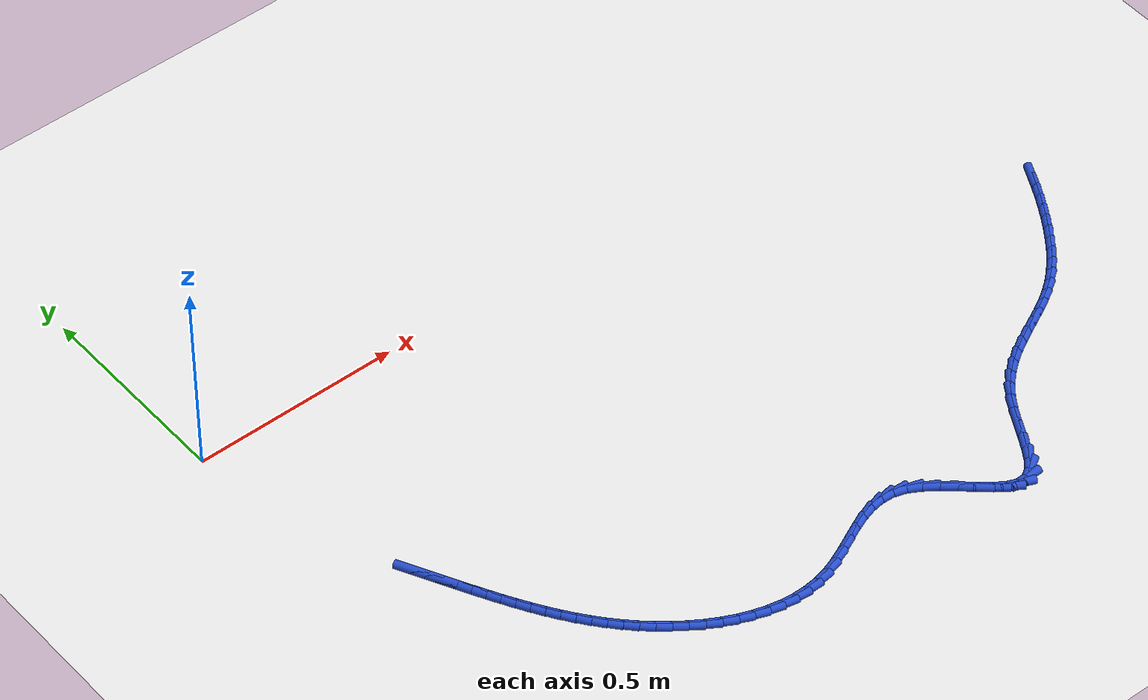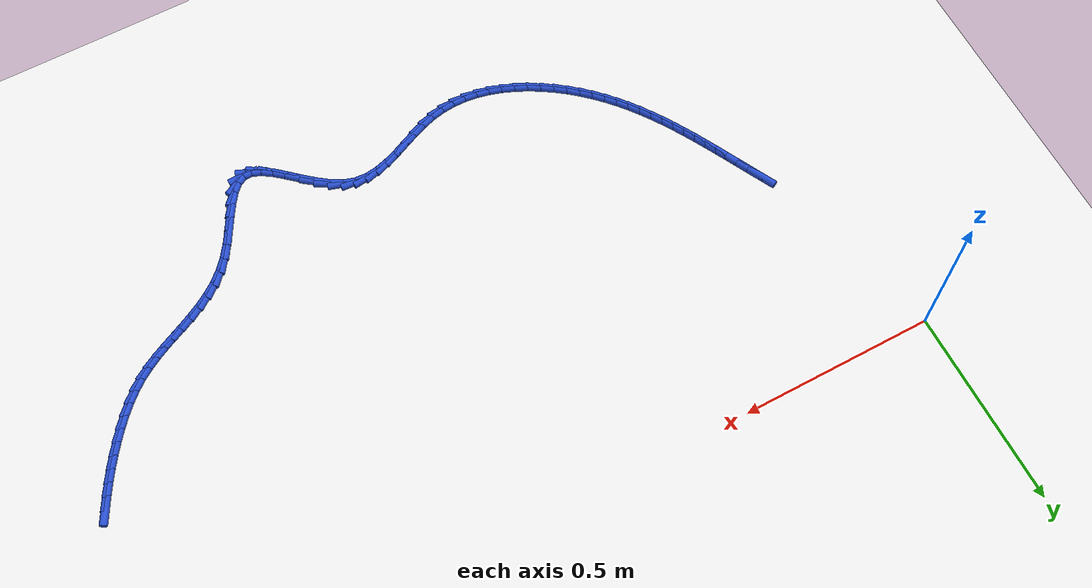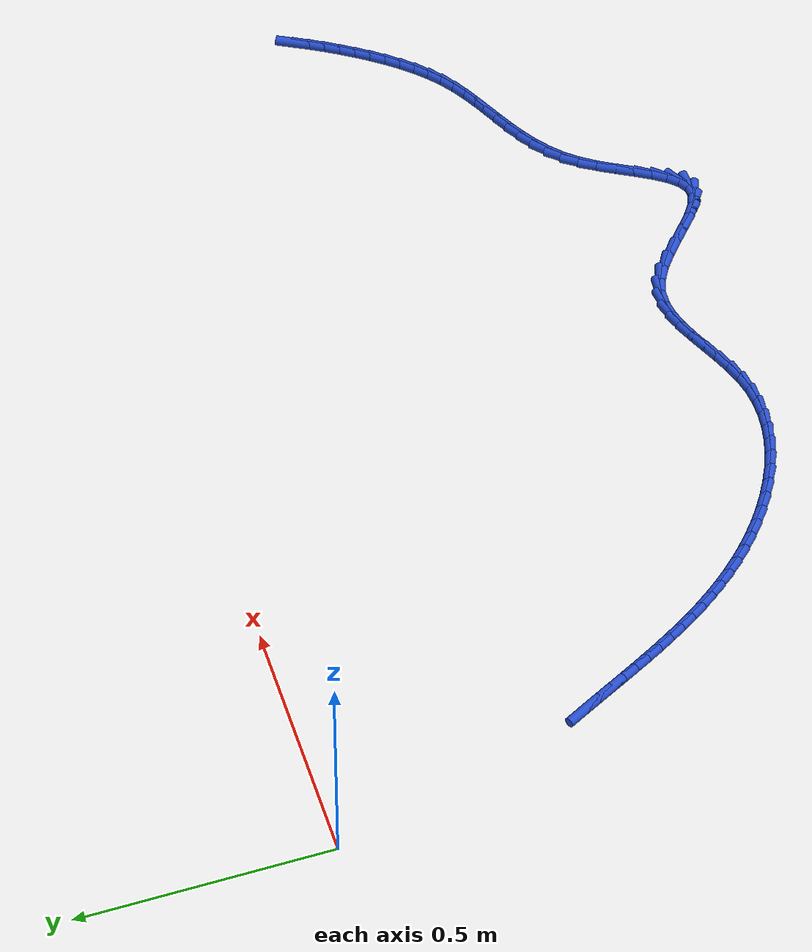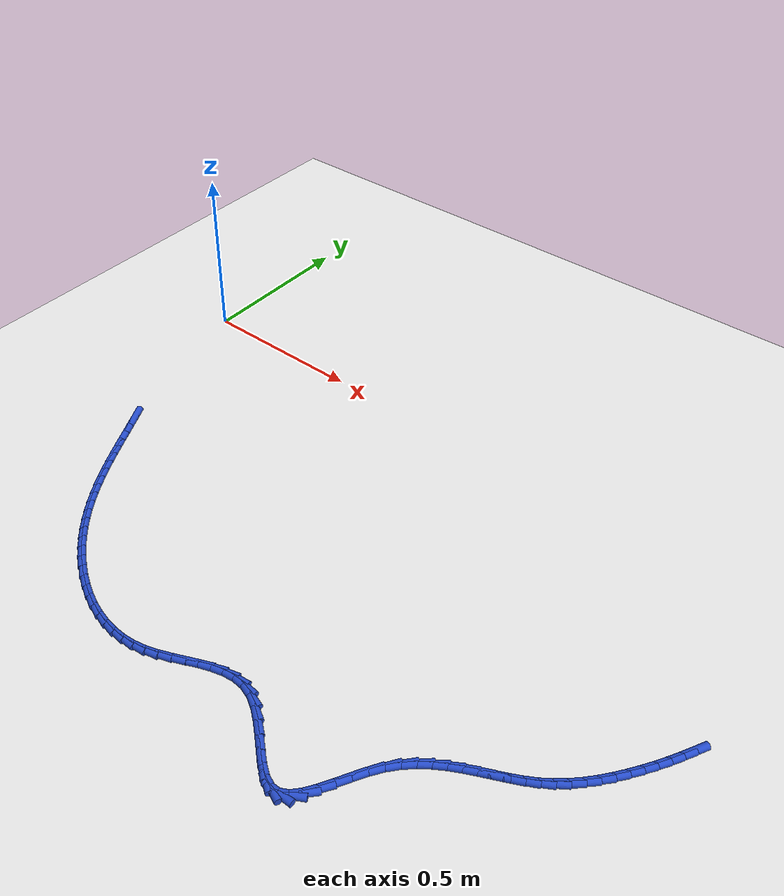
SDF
<sdf version="1.6">
 <world name="default">
  <model name="ground_plane">
   <static>1</static>
   <link name="link">
    <collision name="collision">
     <geometry><plane><normal>0 0 1</normal><size>100 100</size></plane></geometry>
     <surface><friction><ode><mu>100</mu><mu2>50</mu2></ode></friction></surface>
    </collision>
    <visual name="visual">
     <cast_shadows>0</cast_shadows>
     <geometry><plane><normal>0 0 1</normal><size>100 100</size></plane></geometry>
     <material>
      <script><uri>file://media/materials/scripts/gazebo.material</uri><name>Gazebo/WhiteGlow</name></script>
     </material>
    </visual>
   </link>
  </model>
  <model name="line">
   <link name="link_130">
    <pose>1.9173801987009982 -0.49442472301004287 0.01 0 1.57 1.0878493283340742</pose>
    <collision name="collision">
     <geometry><cylinder><radius>0.01</radius><length>0.08</length></cylinder></geometry>
    </collision>
    <visual name="visual">
     <material>
      <script><name>Gazebo/Blue</name><uri>file://media/materials/scripts/gazebo.material</uri></script>
     </material>
     <geometry><cylinder><radius>0.01</radius><length>0.08</length></cylinder></geometry>
    </visual>
   </link>
   <link name="link_131">
    <pose>1.9023852460184747 -0.5230212701452351 0.01 0 1.57 1.0590753725528652</pose>
    <collision name="collision">
     <geometry><cylinder><radius>0.01</radius><length>0.08</length></cylinder></geometry>
    </collision>
    <visual name="visual">
     <material>
      <script><name>Gazebo/Blue</name><uri>file://media/materials/scripts/gazebo.material</uri></script>
     </material>
     <geometry><cylinder><radius>0.01</radius><length>0.08</length></cylinder></geometry>
    </visual>
   </link>
   <link name="link_132">
    <pose>1.8865305405727772 -0.5512515625719641 0.01 0 1.57 1.029764823694465</pose>
    <collision name="collision">
     <geometry><cylinder><radius>0.01</radius><length>0.08</length></cylinder></geometry>
    </collision>
    <visual name="visual">
     <material>
      <script><name>Gazebo/Blue</name><uri>file://media/materials/scripts/gazebo.material</uri></script>
     </material>
     <geometry><cylinder><radius>0.01</radius><length>0.08</length></cylinder></geometry>
    </visual>
   </link>
   <link name="link_133">
    <pose>1.869797259270682 -0.5791017166332928 0.01 0 1.57 0.9999664590166075</pose>
    <collision name="collision">
     <geometry><cylinder><radius>0.01</radius><length>0.08</length></cylinder></geometry>
    </collision>
    <visual name="visual">
     <material>
      <script><name>Gazebo/Blue</name><uri>file://media/materials/scripts/gazebo.material</uri></script>
     </material>
     <geometry><cylinder><radius>0.01</radius><length>0.08</length></cylinder></geometry>
    </visual>
   </link>
   <link name="link_134">
    <pose>1.852166579018963 -0.6065578486722841 0.01 0 1.57 0.9695058572786658</pose>
    <collision name="collision">
     <geometry><cylinder><radius>0.01</radius><length>0.08</length></cylinder></geometry>
    </collision>
    <visual name="visual">
     <material>
      <script><name>Gazebo/Blue</name><uri>file://media/materials/scripts/gazebo.material</uri></script>
     </material>
     <geometry><cylinder><radius>0.01</radius><length>0.08</length></cylinder></geometry>
    </visual>
   </link>
   <link name="link_135">
    <pose>1.8336175857540793 -0.6335958988252974 0.01 0 1.57 0.9345024608657178</pose>
    <collision name="collision">
     <geometry><cylinder><radius>0.01</radius><length>0.08</length></cylinder></geometry>
    </collision>
    <visual name="visual">
     <material>
      <script><name>Gazebo/Blue</name><uri>file://media/materials/scripts/gazebo.material</uri></script>
     </material>
     <geometry><cylinder><radius>0.01</radius><length>0.08</length></cylinder></geometry>
    </visual>
   </link>
   <link name="link_136">
    <pose>1.8140943725599121 -0.6600215061496697 0.01 0 1.57 0.8912859158108628</pose>
    <collision name="collision">
     <geometry><cylinder><radius>0.01</radius><length>0.08</length></cylinder></geometry>
    </collision>
    <visual name="visual">
     <material>
      <script><name>Gazebo/Blue</name><uri>file://media/materials/scripts/gazebo.material</uri></script>
     </material>
     <geometry><cylinder><radius>0.01</radius><length>0.08</length></cylinder></geometry>
    </visual>
   </link>
   <link name="link_137">
    <pose>1.793512064196787 -0.6854993284338482 0.01 0 1.57 0.8389928241421926</pose>
    <collision name="collision">
     <geometry><cylinder><radius>0.01</radius><length>0.08</length></cylinder></geometry>
    </collision>
    <visual name="visual">
     <material>
      <script><name>Gazebo/Blue</name><uri>file://media/materials/scripts/gazebo.material</uri></script>
     </material>
     <geometry><cylinder><radius>0.01</radius><length>0.08</length></cylinder></geometry>
    </visual>
   </link>
   <link name="link_138">
    <pose>1.7717849128603278 -0.7096897769216431 0.01 0 1.57 0.7767374497404815</pose>
    <collision name="collision">
     <geometry><cylinder><radius>0.01</radius><length>0.08</length></cylinder></geometry>
    </collision>
    <visual name="visual">
     <material>
      <script><name>Gazebo/Blue</name><uri>file://media/materials/scripts/gazebo.material</uri></script>
     </material>
     <geometry><cylinder><radius>0.01</radius><length>0.08</length></cylinder></geometry>
    </visual>
   </link>
   <link name="link_139">
    <pose>1.7488271707461562 -0.7322532628568654 0.01 0 1.57 0.7036316256539183</pose>
    <collision name="collision">
     <geometry><cylinder><radius>0.01</radius><length>0.08</length></cylinder></geometry>
    </collision>
    <visual name="visual">
     <material>
      <script><name>Gazebo/Blue</name><uri>file://media/materials/scripts/gazebo.material</uri></script>
     </material>
     <geometry><cylinder><radius>0.01</radius><length>0.08</length></cylinder></geometry>
    </visual>
   </link>
   <link name="link_140">
    <pose>1.7245530900498973 -0.7528501974833244 0.01 0 1.57 0.6202141922207857</pose>
    <collision name="collision">
     <geometry><cylinder><radius>0.01</radius><length>0.08</length></cylinder></geometry>
    </collision>
    <visual name="visual">
     <material>
      <script><name>Gazebo/Blue</name><uri>file://media/materials/scripts/gazebo.material</uri></script>
     </material>
     <geometry><cylinder><radius>0.01</radius><length>0.08</length></cylinder></geometry>
    </visual>
   </link>
   <link name="link_141">
    <pose>1.698892516826381 -0.7711778106630859 0.01 0 1.57 0.544757343311603</pose>
    <collision name="collision">
     <geometry><cylinder><radius>0.01</radius><length>0.08</length></cylinder></geometry>
    </collision>
    <visual name="visual">
     <material>
      <script><name>Gazebo/Blue</name><uri>file://media/materials/scripts/gazebo.material</uri></script>
     </material>
     <geometry><cylinder><radius>0.01</radius><length>0.08</length></cylinder></geometry>
    </visual>
   </link>
   <link name="link_142">
    <pose>1.6720028680957777 -0.787470649441063 0.01 0 1.57 0.49215629121505666</pose>
    <collision name="collision">
     <geometry><cylinder><radius>0.01</radius><length>0.08</length></cylinder></geometry>
    </collision>
    <visual name="visual">
     <material>
      <script><name>Gazebo/Blue</name><uri>file://media/materials/scripts/gazebo.material</uri></script>
     </material>
     <geometry><cylinder><radius>0.01</radius><length>0.08</length></cylinder></geometry>
    </visual>
   </link>
   <link name="link_143">
    <pose>1.6442138457847084 -0.8023700422828252 0.01 0 1.57 0.4630870605948877</pose>
    <collision name="collision">
     <geometry><cylinder><radius>0.01</radius><length>0.08</length></cylinder></geometry>
    </collision>
    <visual name="visual">
     <material>
      <script><name>Gazebo/Blue</name><uri>file://media/materials/scripts/gazebo.material</uri></script>
     </material>
     <geometry><cylinder><radius>0.01</radius><length>0.08</length></cylinder></geometry>
    </visual>
   </link>
   <link name="link_144">
    <pose>1.6158594192875653 -0.8165273935603974 0.01 0 1.57 0.45729672517436504</pose>
    <collision name="collision">
     <geometry><cylinder><radius>0.01</radius><length>0.08</length></cylinder></geometry>
    </collision>
    <visual name="visual">
     <material>
      <script><name>Gazebo/Blue</name><uri>file://media/materials/scripts/gazebo.material</uri></script>
     </material>
     <geometry><cylinder><radius>0.01</radius><length>0.08</length></cylinder></geometry>
    </visual>
   </link>
   <link name="link_145">
    <pose>1.5872735579987376 -0.8305941076458053 0.01 0 1.57 0.47442511153995576</pose>
    <collision name="collision">
     <geometry><cylinder><radius>0.01</radius><length>0.08</length></cylinder></geometry>
    </collision>
    <visual name="visual">
     <material>
      <script><name>Gazebo/Blue</name><uri>file://media/materials/scripts/gazebo.material</uri></script>
     </material>
     <geometry><cylinder><radius>0.01</radius><length>0.08</length></cylinder></geometry>
    </visual>
   </link>
   <link name="link_146">
    <pose>1.558790231312615 -0.8452215889110748 0.01 0 1.57 0.5141026846250231</pose>
    <collision name="collision">
     <geometry><cylinder><radius>0.01</radius><length>0.08</length></cylinder></geometry>
    </collision>
    <visual name="visual">
     <material>
      <script><name>Gazebo/Blue</name><uri>file://media/materials/scripts/gazebo.material</uri></script>
     </material>
     <geometry><cylinder><radius>0.01</radius><length>0.08</length></cylinder></geometry>
    </visual>
   </link>
   <link name="link_147">
    <pose>1.5307434086235885 -0.8610612417282317 0.01 0 1.57 0.5756945617113949</pose>
    <collision name="collision">
     <geometry><cylinder><radius>0.01</radius><length>0.08</length></cylinder></geometry>
    </collision>
    <visual name="visual">
     <material>
      <script><name>Gazebo/Blue</name><uri>file://media/materials/scripts/gazebo.material</uri></script>
     </material>
     <geometry><cylinder><radius>0.01</radius><length>0.08</length></cylinder></geometry>
    </visual>
   </link>
   <link name="link_148">
    <pose>1.503467059326046 -0.8787644704693017 0.01 0 1.57 0.6577561277380527</pose>
    <collision name="collision">
     <geometry><cylinder><radius>0.01</radius><length>0.08</length></cylinder></geometry>
    </collision>
    <visual name="visual">
     <material>
      <script><name>Gazebo/Blue</name><uri>file://media/materials/scripts/gazebo.material</uri></script>
     </material>
     <geometry><cylinder><radius>0.01</radius><length>0.08</length></cylinder></geometry>
    </visual>
   </link>
   <link name="link_149">
    <pose>1.47729515281438 -0.8989826795063097 0.01 0 1.57 0.7573723730848415</pose>
    <collision name="collision">
     <geometry><cylinder><radius>0.01</radius><length>0.08</length></cylinder></geometry>
    </collision>
    <visual name="visual">
     <material>
      <script><name>Gazebo/Blue</name><uri>file://media/materials/scripts/gazebo.material</uri></script>
     </material>
     <geometry><cylinder><radius>0.01</radius><length>0.08</length></cylinder></geometry>
    </visual>
   </link>
   <link name="link_150">
    <pose>1.4525616584829801 -0.922367273211282 0.01 0 1.57 0.8697464888515052</pose>
    <collision name="collision">
     <geometry><cylinder><radius>0.01</radius><length>0.08</length></cylinder></geometry>
    </collision>
    <visual name="visual">
     <material>
      <script><name>Gazebo/Blue</name><uri>file://media/materials/scripts/gazebo.material</uri></script>
     </material>
     <geometry><cylinder><radius>0.01</radius><length>0.08</length></cylinder></geometry>
    </visual>
   </link>
   <link name="link_151">
    <pose>1.429600545726236 -0.9495696559562434 0.01 0 1.57 0.9787629173978222</pose>
    <collision name="collision">
     <geometry><cylinder><radius>0.01</radius><length>0.08</length></cylinder></geometry>
    </collision>
    <visual name="visual">
     <material>
      <script><name>Gazebo/Blue</name><uri>file://media/materials/scripts/gazebo.material</uri></script>
     </material>
     <geometry><cylinder><radius>0.01</radius><length>0.08</length></cylinder></geometry>
    </visual>
   </link>
   <link name="link_152">
    <pose>1.408605648316937 -0.980788617872846 0.01 0 1.57 1.04525622446576</pose>
    <collision name="collision">
     <geometry><cylinder><radius>0.01</radius><length>0.08</length></cylinder></geometry>
    </collision>
    <visual name="visual">
     <material>
      <script><name>Gazebo/Blue</name><uri>file://media/materials/scripts/gazebo.material</uri></script>
     </material>
     <geometry><cylinder><radius>0.01</radius><length>0.08</length></cylinder></geometry>
    </visual>
   </link>
   <link name="link_153">
    <pose>1.3891738882489324 -1.0142950254976388 0.01 0 1.57 1.0684730981246096</pose>
    <collision name="collision">
     <geometry><cylinder><radius>0.01</radius><length>0.08</length></cylinder></geometry>
    </collision>
    <visual name="visual">
     <material>
      <script><name>Gazebo/Blue</name><uri>file://media/materials/scripts/gazebo.material</uri></script>
     </material>
     <geometry><cylinder><radius>0.01</radius><length>0.08</length></cylinder></geometry>
    </visual>
   </link>
   <link name="link_154">
    <pose>1.3707432849790213 -1.0478465171795142 0.01 0 1.57 1.0498551595724042</pose>
    <collision name="collision">
     <geometry><cylinder><radius>0.01</radius><length>0.08</length></cylinder></geometry>
    </collision>
    <visual name="visual">
     <material>
      <script><name>Gazebo/Blue</name><uri>file://media/materials/scripts/gazebo.material</uri></script>
     </material>
     <geometry><cylinder><radius>0.01</radius><length>0.08</length></cylinder></geometry>
    </visual>
   </link>
   <link name="link_155">
    <pose>1.35275185659107 -1.079200726833023 0.01 0 1.57 0.9784031066535749</pose>
    <collision name="collision">
     <geometry><cylinder><radius>0.01</radius><length>0.08</length></cylinder></geometry>
    </collision>
    <visual name="visual">
     <material>
      <script><name>Gazebo/Blue</name><uri>file://media/materials/scripts/gazebo.material</uri></script>
     </material>
     <geometry><cylinder><radius>0.01</radius><length>0.08</length></cylinder></geometry>
    </visual>
   </link>
   <link name="link_156">
    <pose>1.3346376211689432 -1.1061152883727174 0.01 0 1.57 0.8221089303563327</pose>
    <collision name="collision">
     <geometry><cylinder><radius>0.01</radius><length>0.08</length></cylinder></geometry>
    </collision>
    <visual name="visual">
     <material>
      <script><name>Gazebo/Blue</name><uri>file://media/materials/scripts/gazebo.material</uri></script>
     </material>
     <geometry><cylinder><radius>0.01</radius><length>0.08</length></cylinder></geometry>
    </visual>
   </link>
   <link name="link_157">
    <pose>1.3158385967965092 -1.126347835713148 0.01 0 1.57 0.5136166977992139</pose>
    <collision name="collision">
     <geometry><cylinder><radius>0.01</radius><length>0.08</length></cylinder></geometry>
    </collision>
    <visual name="visual">
     <material>
      <script><name>Gazebo/Blue</name><uri>file://media/materials/scripts/gazebo.material</uri></script>
     </material>
     <geometry><cylinder><radius>0.01</radius><length>0.08</length></cylinder></geometry>
    </visual>
   </link>
   <link name="link_158">
    <pose>1.2957928015576323 -1.1376560027688662 0.01 0 1.57 0.018917991141412068</pose>
    <collision name="collision">
     <geometry><cylinder><radius>0.01</radius><length>0.08</length></cylinder></geometry>
    </collision>
    <visual name="visual">
     <material>
      <script><name>Gazebo/Blue</name><uri>file://media/materials/scripts/gazebo.material</uri></script>
     </material>
     <geometry><cylinder><radius>0.01</radius><length>0.08</length></cylinder></geometry>
    </visual>
   </link>
   <link name="link_159">
    <pose>1.273982799134783 -1.1380686534305724 0.01 0 1.57 -0.38730989538528104</pose>
    <collision name="collision">
     <geometry><cylinder><radius>0.01</radius><length>0.08</length></cylinder></geometry>
    </collision>
    <visual name="visual">
     <material>
      <script><name>Gazebo/Blue</name><uri>file://media/materials/scripts/gazebo.material</uri></script>
     </material>
     <geometry><cylinder><radius>0.01</radius><length>0.08</length></cylinder></geometry>
    </visual>
   </link>
   <link name="link_160">
    <pose>1.2503535248723738 -1.1284299477972044 0.01 0 1.57 -0.5977695269851019</pose>
    <collision name="collision">
     <geometry><cylinder><radius>0.01</radius><length>0.08</length></cylinder></geometry>
    </collision>
    <visual name="visual">
     <material>
      <script><name>Gazebo/Blue</name><uri>file://media/materials/scripts/gazebo.material</uri></script>
     </material>
     <geometry><cylinder><radius>0.01</radius><length>0.08</length></cylinder></geometry>
    </visual>
   </link>
   <link name="link_161">
    <pose>1.2251238304610061 -1.11125187233826 0.01 0 1.57 -0.6949725949859916</pose>
    <collision name="collision">
     <geometry><cylinder><radius>0.01</radius><length>0.08</length></cylinder></geometry>
    </collision>
    <visual name="visual">
     <material>
      <script><name>Gazebo/Blue</name><uri>file://media/materials/scripts/gazebo.material</uri></script>
     </material>
     <geometry><cylinder><radius>0.01</radius><length>0.08</length></cylinder></geometry>
    </visual>
   </link>
   <link name="link_162">
    <pose>1.1985161524268653 -1.089068240929335 0.01 0 1.57 -0.7261783860694181</pose>
    <collision name="collision">
     <geometry><cylinder><radius>0.01</radius><length>0.08</length></cylinder></geometry>
    </collision>
    <visual name="visual">
     <material>
      <script><name>Gazebo/Blue</name><uri>file://media/materials/scripts/gazebo.material</uri></script>
     </material>
     <geometry><cylinder><radius>0.01</radius><length>0.08</length></cylinder></geometry>
    </visual>
   </link>
   <link name="link_163">
    <pose>1.1707529272961377 -1.0644128674460236 0.01 0 1.57 -0.7085548025794147</pose>
    <collision name="collision">
     <geometry><cylinder><radius>0.01</radius><length>0.08</length></cylinder></geometry>
    </collision>
    <visual name="visual">
     <material>
      <script><name>Gazebo/Blue</name><uri>file://media/materials/scripts/gazebo.material</uri></script>
     </material>
     <geometry><cylinder><radius>0.01</radius><length>0.08</length></cylinder></geometry>
    </visual>
   </link>
   <link name="link_164">
    <pose>1.1420565915950085 -1.0398195657639207 0.01 0 1.57 -0.6422410895646036</pose>
    <collision name="collision">
     <geometry><cylinder><radius>0.01</radius><length>0.08</length></cylinder></geometry>
    </collision>
    <visual name="visual">
     <material>
      <script><name>Gazebo/Blue</name><uri>file://media/materials/scripts/gazebo.material</uri></script>
     </material>
     <geometry><cylinder><radius>0.01</radius><length>0.08</length></cylinder></geometry>
    </visual>
   </link>
   <link name="link_165">
    <pose>1.1126495818496636 -1.0178221497586206 0.01 0 1.57 -0.5137006705987942</pose>
    <collision name="collision">
     <geometry><cylinder><radius>0.01</radius><length>0.08</length></cylinder></geometry>
    </collision>
    <visual name="visual">
     <material>
      <script><name>Gazebo/Blue</name><uri>file://media/materials/scripts/gazebo.material</uri></script>
     </material>
     <geometry><cylinder><radius>0.01</radius><length>0.08</length></cylinder></geometry>
    </visual>
   </link>
   <link name="link_166">
    <pose>1.0827543345862902 -1.0009544333057192 0.01 0 1.57 -0.30174721510952335</pose>
    <collision name="collision">
     <geometry><cylinder><radius>0.01</radius><length>0.08</length></cylinder></geometry>
    </collision>
    <visual name="visual">
     <material>
      <script><name>Gazebo/Blue</name><uri>file://media/materials/scripts/gazebo.material</uri></script>
     </material>
     <geometry><cylinder><radius>0.01</radius><length>0.08</length></cylinder></geometry>
    </visual>
   </link>
   <link name="link_167">
    <pose>1.0525821264071593 -0.9915632824875864 0.01 0 1.57 -0.06009073296960137</pose>
    <collision name="collision">
     <geometry><cylinder><radius>0.01</radius><length>0.08</length></cylinder></geometry>
    </collision>
    <visual name="visual">
     <material>
      <script><name>Gazebo/Blue</name><uri>file://media/materials/scripts/gazebo.material</uri></script>
     </material>
     <geometry><cylinder><radius>0.01</radius><length>0.08</length></cylinder></geometry>
    </visual>
   </link>
   <link name="link_168">
    <pose>1.022209345972812 -0.9897359598952586 0.01 0 1.57 0.14043534807567443</pose>
    <collision name="collision">
     <geometry><cylinder><radius>0.01</radius><length>0.08</length></cylinder></geometry>
    </collision>
    <visual name="visual">
     <material>
      <script><name>Gazebo/Blue</name><uri>file://media/materials/scripts/gazebo.material</uri></script>
     </material>
     <geometry><cylinder><radius>0.01</radius><length>0.08</length></cylinder></geometry>
    </visual>
   </link>
   <link name="link_169">
    <pose>0.9916228460234893 -0.9940598484751373 0.01 0 1.57 0.2852237920548201</pose>
    <collision name="collision">
     <geometry><cylinder><radius>0.01</radius><length>0.08</length></cylinder></geometry>
    </collision>
    <visual name="visual">
     <material>
      <script><name>Gazebo/Blue</name><uri>file://media/materials/scripts/gazebo.material</uri></script>
     </material>
     <geometry><cylinder><radius>0.01</radius><length>0.08</length></cylinder></geometry>
    </visual>
   </link>
   <link name="link_170">
    <pose>0.960807870033031 -1.0030953732118213 0.01 0 1.57 0.3772908921286762</pose>
    <collision name="collision">
     <geometry><cylinder><radius>0.01</radius><length>0.08</length></cylinder></geometry>
    </collision>
    <visual name="visual">
     <material>
      <script><name>Gazebo/Blue</name><uri>file://media/materials/scripts/gazebo.material</uri></script>
     </material>
     <geometry><cylinder><radius>0.01</radius><length>0.08</length></cylinder></geometry>
    </visual>
   </link>
   <link name="link_171">
    <pose>0.9297496614752754 -1.0154029590899094 0.01 0 1.57 0.4241220793134029</pose>
    <collision name="collision">
     <geometry><cylinder><radius>0.01</radius><length>0.08</length></cylinder></geometry>
    </collision>
    <visual name="visual">
     <material>
      <script><name>Gazebo/Blue</name><uri>file://media/materials/scripts/gazebo.material</uri></script>
     </material>
     <geometry><cylinder><radius>0.01</radius><length>0.08</length></cylinder></geometry>
    </visual>
   </link>
   <link name="link_172">
    <pose>0.898433463824062 -1.0295430310939997 0.01 0 1.57 0.43119280362994983</pose>
    <collision name="collision">
     <geometry><cylinder><radius>0.01</radius><length>0.08</length></cylinder></geometry>
    </collision>
    <visual name="visual">
     <material>
      <script><name>Gazebo/Blue</name><uri>file://media/materials/scripts/gazebo.material</uri></script>
     </material>
     <geometry><cylinder><radius>0.01</radius><length>0.08</length></cylinder></geometry>
    </visual>
   </link>
   <link name="link_173">
    <pose>0.8668445205532286 -1.0440760142086916 0.01 0 1.57 0.4002441364581532</pose>
    <collision name="collision">
     <geometry><cylinder><radius>0.01</radius><length>0.08</length></cylinder></geometry>
    </collision>
    <visual name="visual">
     <material>
      <script><name>Gazebo/Blue</name><uri>file://media/materials/scripts/gazebo.material</uri></script>
     </material>
     <geometry><cylinder><radius>0.01</radius><length>0.08</length></cylinder></geometry>
    </visual>
   </link>
   <link name="link_174">
    <pose>0.8349680751366161 -1.0575623334185824 0.01 0 1.57 0.3293900363128166</pose>
    <collision name="collision">
     <geometry><cylinder><radius>0.01</radius><length>0.08</length></cylinder></geometry>
    </collision>
    <visual name="visual">
     <material>
      <script><name>Gazebo/Blue</name><uri>file://media/materials/scripts/gazebo.material</uri></script>
     </material>
     <geometry><cylinder><radius>0.01</radius><length>0.08</length></cylinder></geometry>
    </visual>
   </link>
   <link name="link_175">
    <pose>0.8027893710480627 -1.0685624137082712 0.01 0 1.57 0.2189325186085711</pose>
    <collision name="collision">
     <geometry><cylinder><radius>0.01</radius><length>0.08</length></cylinder></geometry>
    </collision>
    <visual name="visual">
     <material>
      <script><name>Gazebo/Blue</name><uri>file://media/materials/scripts/gazebo.material</uri></script>
     </material>
     <geometry><cylinder><radius>0.01</radius><length>0.08</length></cylinder></geometry>
    </visual>
   </link>
   <link name="link_176">
    <pose>0.7703086924161776 -1.0757893266073424 0.01 0 1.57 0.09921248550186852</pose>
    <collision name="collision">
     <geometry><cylinder><radius>0.01</radius><length>0.08</length></cylinder></geometry>
    </collision>
    <visual name="visual">
     <material>
      <script><name>Gazebo/Blue</name><uri>file://media/materials/scripts/gazebo.material</uri></script>
     </material>
     <geometry><cylinder><radius>0.01</radius><length>0.08</length></cylinder></geometry>
    </visual>
   </link>
   <link name="link_177">
    <pose>0.7376332970842993 -1.0790418123351113 0.01 0 1.57 -0.013837466463608424</pose>
    <collision name="collision">
     <geometry><cylinder><radius>0.01</radius><length>0.08</length></cylinder></geometry>
    </collision>
    <visual name="visual">
     <material>
      <script><name>Gazebo/Blue</name><uri>file://media/materials/scripts/gazebo.material</uri></script>
     </material>
     <geometry><cylinder><radius>0.01</radius><length>0.08</length></cylinder></geometry>
    </visual>
   </link>
   <link name="link_178">
    <pose>0.7049167984127723 -1.0785890699852159 0.01 0 1.57 -0.11865544203372591</pose>
    <collision name="collision">
     <geometry><cylinder><radius>0.01</radius><length>0.08</length></cylinder></geometry>
    </collision>
    <visual name="visual">
     <material>
      <script><name>Gazebo/Blue</name><uri>file://media/materials/scripts/gazebo.material</uri></script>
     </material>
     <geometry><cylinder><radius>0.01</radius><length>0.08</length></cylinder></geometry>
    </visual>
   </link>
   <link name="link_179">
    <pose>0.6723129964211545 -1.0747021930424487 0.01 0 1.57 -0.21465321776711532</pose>
    <collision name="collision">
     <geometry><cylinder><radius>0.01</radius><length>0.08</length></cylinder></geometry>
    </collision>
    <visual name="visual">
     <material>
      <script><name>Gazebo/Blue</name><uri>file://media/materials/scripts/gazebo.material</uri></script>
     </material>
     <geometry><cylinder><radius>0.01</radius><length>0.08</length></cylinder></geometry>
    </visual>
   </link>
   <link name="link_180">
    <pose>0.6399756911290005 -1.0676522749916004 0.01 0 1.57 -0.3019655090349952</pose>
    <collision name="collision">
     <geometry><cylinder><radius>0.01</radius><length>0.08</length></cylinder></geometry>
    </collision>
    <visual name="visual">
     <material>
      <script><name>Gazebo/Blue</name><uri>file://media/materials/scripts/gazebo.material</uri></script>
     </material>
     <geometry><cylinder><radius>0.01</radius><length>0.08</length></cylinder></geometry>
    </visual>
   </link>
   <link name="link_181">
    <pose>0.6080586825558653 -1.057710409317461 0.01 0 1.57 -0.38120905734711863</pose>
    <collision name="collision">
     <geometry><cylinder><radius>0.01</radius><length>0.08</length></cylinder></geometry>
    </collision>
    <visual name="visual">
     <material>
      <script><name>Gazebo/Blue</name><uri>file://media/materials/scripts/gazebo.material</uri></script>
     </material>
     <geometry><cylinder><radius>0.01</radius><length>0.08</length></cylinder></geometry>
    </visual>
   </link>
   <link name="link_182">
    <pose>0.5767157707213038 -1.0451476895048217 0.01 0 1.57 -0.45327198851745276</pose>
    <collision name="collision">
     <geometry><cylinder><radius>0.01</radius><length>0.08</length></cylinder></geometry>
    </collision>
    <visual name="visual">
     <material>
      <script><name>Gazebo/Blue</name><uri>file://media/materials/scripts/gazebo.material</uri></script>
     </material>
     <geometry><cylinder><radius>0.01</radius><length>0.08</length></cylinder></geometry>
    </visual>
   </link>
   <link name="link_183">
    <pose>0.5461007556448728 -1.0302352090384743 0.01 0 1.57 -0.5191633554253816</pose>
    <collision name="collision">
     <geometry><cylinder><radius>0.01</radius><length>0.08</length></cylinder></geometry>
    </collision>
    <visual name="visual">
     <material>
      <script><name>Gazebo/Blue</name><uri>file://media/materials/scripts/gazebo.material</uri></script>
     </material>
     <geometry><cylinder><radius>0.01</radius><length>0.08</length></cylinder></geometry>
    </visual>
   </link>
   <link name="link_184">
    <pose>0.516367437346127 -1.013244061403209 0.01 0 1.57 -0.579922322502566</pose>
    <collision name="collision">
     <geometry><cylinder><radius>0.01</radius><length>0.08</length></cylinder></geometry>
    </collision>
    <visual name="visual">
     <material>
      <script><name>Gazebo/Blue</name><uri>file://media/materials/scripts/gazebo.material</uri></script>
     </material>
     <geometry><cylinder><radius>0.01</radius><length>0.08</length></cylinder></geometry>
    </visual>
   </link>
   <link name="link_185">
    <pose>0.487669615844622 -0.9944453400838167 0.01 0 1.57 -0.6365743601612281</pose>
    <collision name="collision">
     <geometry><cylinder><radius>0.01</radius><length>0.08</length></cylinder></geometry>
    </collision>
    <visual name="visual">
     <material>
      <script><name>Gazebo/Blue</name><uri>file://media/materials/scripts/gazebo.material</uri></script>
     </material>
     <geometry><cylinder><radius>0.01</radius><length>0.08</length></cylinder></geometry>
    </visual>
   </link>
   <link name="link_186">
    <pose>0.4601610911599124 -0.9741101385650883 0.01 0 1.57 -0.6901208351159581</pose>
    <collision name="collision">
     <geometry><cylinder><radius>0.01</radius><length>0.08</length></cylinder></geometry>
    </collision>
    <visual name="visual">
     <material>
      <script><name>Gazebo/Blue</name><uri>file://media/materials/scripts/gazebo.material</uri></script>
     </material>
     <geometry><cylinder><radius>0.01</radius><length>0.08</length></cylinder></geometry>
    </visual>
   </link>
   <link name="link_187">
    <pose>0.4339956633115549 -0.952509550331815 0.01 0 1.57 -0.7414829368931375</pose>
    <collision name="collision">
     <geometry><cylinder><radius>0.01</radius><length>0.08</length></cylinder></geometry>
    </collision>
    <visual name="visual">
     <material>
      <script><name>Gazebo/Blue</name><uri>file://media/materials/scripts/gazebo.material</uri></script>
     </material>
     <geometry><cylinder><radius>0.01</radius><length>0.08</length></cylinder></geometry>
    </visual>
   </link>
   <link name="link_188">
    <pose>0.40930586292606735 -0.9298983217279816 0.01 0 1.57 -0.7906826271300512</pose>
    <collision name="collision">
     <geometry><cylinder><radius>0.01</radius><length>0.08</length></cylinder></geometry>
    </collision>
    <visual name="visual">
     <material>
      <script><name>Gazebo/Blue</name><uri>file://media/materials/scripts/gazebo.material</uri></script>
     </material>
     <geometry><cylinder><radius>0.01</radius><length>0.08</length></cylinder></geometry>
    </visual>
   </link>
   <link name="link_189">
    <pose>0.38605799895550846 -0.9064034451408572 0.01 0 1.57 -0.8371332453188554</pose>
    <collision name="collision">
     <geometry><cylinder><radius>0.01</radius><length>0.08</length></cylinder></geometry>
    </collision>
    <visual name="visual">
     <material>
      <script><name>Gazebo/Blue</name><uri>file://media/materials/scripts/gazebo.material</uri></script>
     </material>
     <geometry><cylinder><radius>0.01</radius><length>0.08</length></cylinder></geometry>
    </visual>
   </link>
   <link name="link_190">
    <pose>0.36414019408365766 -0.8820918208838827 0.01 0 1.57 -0.8804249516151736</pose>
    <collision name="collision">
     <geometry><cylinder><radius>0.01</radius><length>0.08</length></cylinder></geometry>
    </collision>
    <visual name="visual">
     <material>
      <script><name>Gazebo/Blue</name><uri>file://media/materials/scripts/gazebo.material</uri></script>
     </material>
     <geometry><cylinder><radius>0.01</radius><length>0.08</length></cylinder></geometry>
    </visual>
   </link>
   <link name="link_191">
    <pose>0.34344011596006907 -0.8570299995422045 0.01 0 1.57 -0.9202337035990531</pose>
    <collision name="collision">
     <geometry><cylinder><radius>0.01</radius><length>0.08</length></cylinder></geometry>
    </collision>
    <visual name="visual">
     <material>
      <script><name>Gazebo/Blue</name><uri>file://media/materials/scripts/gazebo.material</uri></script>
     </material>
     <geometry><cylinder><radius>0.01</radius><length>0.08</length></cylinder></geometry>
    </visual>
   </link>
   <link name="link_192">
    <pose>0.3238454322342952 -0.8312845317009675 0.01 0 1.57 -0.9563168715139111</pose>
    <collision name="collision">
     <geometry><cylinder><radius>0.01</radius><length>0.08</length></cylinder></geometry>
    </collision>
    <visual name="visual">
     <material>
      <script><name>Gazebo/Blue</name><uri>file://media/materials/scripts/gazebo.material</uri></script>
     </material>
     <geometry><cylinder><radius>0.01</radius><length>0.08</length></cylinder></geometry>
    </visual>
   </link>
   <link name="link_193">
    <pose>0.3052438105558894 -0.8049219679453177 0.01 0 1.57 -0.9885049357150776</pose>
    <collision name="collision">
     <geometry><cylinder><radius>0.01</radius><length>0.08</length></cylinder></geometry>
    </collision>
    <visual name="visual">
     <material>
      <script><name>Gazebo/Blue</name><uri>file://media/materials/scripts/gazebo.material</uri></script>
     </material>
     <geometry><cylinder><radius>0.01</radius><length>0.08</length></cylinder></geometry>
    </visual>
   </link>
   <link name="link_194">
    <pose>0.28752291857440476 -0.7780088588604002 0.01 0 1.57 -1.0166898587393682</pose>
    <collision name="collision">
     <geometry><cylinder><radius>0.01</radius><length>0.08</length></cylinder></geometry>
    </collision>
    <visual name="visual">
     <material>
      <script><name>Gazebo/Blue</name><uri>file://media/materials/scripts/gazebo.material</uri></script>
     </material>
     <geometry><cylinder><radius>0.01</radius><length>0.08</length></cylinder></geometry>
    </visual>
   </link>
   <link name="link_195">
    <pose>0.2705704239393941 -0.7506117550313601 0.01 0 1.57 -1.040812043585598</pose>
    <collision name="collision">
     <geometry><cylinder><radius>0.01</radius><length>0.08</length></cylinder></geometry>
    </collision>
    <visual name="visual">
     <material>
      <script><name>Gazebo/Blue</name><uri>file://media/materials/scripts/gazebo.material</uri></script>
     </material>
     <geometry><cylinder><radius>0.01</radius><length>0.08</length></cylinder></geometry>
    </visual>
   </link>
   <link name="link_196">
    <pose>0.25427399430041125 -0.7227972070433444 0.01 0 1.57 -1.0608473918317378</pose>
    <collision name="collision">
     <geometry><cylinder><radius>0.01</radius><length>0.08</length></cylinder></geometry>
    </collision>
    <visual name="visual">
     <material>
      <script><name>Gazebo/Blue</name><uri>file://media/materials/scripts/gazebo.material</uri></script>
     </material>
     <geometry><cylinder><radius>0.01</radius><length>0.08</length></cylinder></geometry>
    </visual>
   </link>
   <link name="link_197">
    <pose>0.23852129730700916 -0.694631765481498 0.01 0 1.57 -1.076795503997436</pose>
    <collision name="collision">
     <geometry><cylinder><radius>0.01</radius><length>0.08</length></cylinder></geometry>
    </collision>
    <visual name="visual">
     <material>
      <script><name>Gazebo/Blue</name><uri>file://media/materials/scripts/gazebo.material</uri></script>
     </material>
     <geometry><cylinder><radius>0.01</radius><length>0.08</length></cylinder></geometry>
    </visual>
   </link>
   <link name="link_198">
    <pose>0.22320000060874085 -0.6661819809309663 0.01 0 1.57 -1.0886696364482233</pose>
    <collision name="collision">
     <geometry><cylinder><radius>0.01</radius><length>0.08</length></cylinder></geometry>
    </collision>
    <visual name="visual">
     <material>
      <script><name>Gazebo/Blue</name><uri>file://media/materials/scripts/gazebo.material</uri></script>
     </material>
     <geometry><cylinder><radius>0.01</radius><length>0.08</length></cylinder></geometry>
    </visual>
   </link>
   <link name="link_199">
    <pose>0.20819777185515922 -0.6375144039768944 0.01 0 1.57 -1.0964887022759373</pose>
    <collision name="collision">
     <geometry><cylinder><radius>0.01</radius><length>0.08</length></cylinder></geometry>
    </collision>
    <visual name="visual">
     <material>
      <script><name>Gazebo/Blue</name><uri>file://media/materials/scripts/gazebo.material</uri></script>
     </material>
     <geometry><cylinder><radius>0.01</radius><length>0.08</length></cylinder></geometry>
    </visual>
   </link>
   <link name="link_200">
    <pose>0.1934022786958181 -0.608695585204429 0.01 0 1.57 -1.1002713910523856</pose>
    <collision name="collision">
     <geometry><cylinder><radius>0.01</radius><length>0.08</length></cylinder></geometry>
    </collision>
    <visual name="visual">
     <material>
      <script><name>Gazebo/Blue</name><uri>file://media/materials/scripts/gazebo.material</uri></script>
     </material>
     <geometry><cylinder><radius>0.01</radius><length>0.08</length></cylinder></geometry>
    </visual>
   </link>
   <link name="link_201">
    <pose>0.17870118878027033 -0.5797920751987153 0.01 0 1.57 -1.1000323704780588</pose>
    <collision name="collision">
     <geometry><cylinder><radius>0.01</radius><length>0.08</length></cylinder></geometry>
    </collision>
    <visual name="visual">
     <material>
      <script><name>Gazebo/Blue</name><uri>file://media/materials/scripts/gazebo.material</uri></script>
     </material>
     <geometry><cylinder><radius>0.01</radius><length>0.08</length></cylinder></geometry>
    </visual>
   </link>
   <link name="link_202">
    <pose>0.1639821697580691 -0.5508704245448987 0.01 0 1.57 -1.096204285949995</pose>
    <collision name="collision">
     <geometry><cylinder><radius>0.01</radius><length>0.08</length></cylinder></geometry>
    </collision>
    <visual name="visual">
     <material>
      <script><name>Gazebo/Blue</name><uri>file://media/materials/scripts/gazebo.material</uri></script>
     </material>
     <geometry><cylinder><radius>0.01</radius><length>0.08</length></cylinder></geometry>
    </visual>
   </link>
   <link name="link_203">
    <pose>0.1491454433190125 -0.5219915095651997 0.01 0 1.57 -1.0941025798884825</pose>
    <collision name="collision">
     <geometry><cylinder><radius>0.01</radius><length>0.08</length></cylinder></geometry>
    </collision>
    <visual name="visual">
     <material>
      <script><name>Gazebo/Blue</name><uri>file://media/materials/scripts/gazebo.material</uri></script>
     </material>
     <geometry><cylinder><radius>0.01</radius><length>0.08</length></cylinder></geometry>
    </visual>
   </link>
  </model>
 </world>
</sdf>
